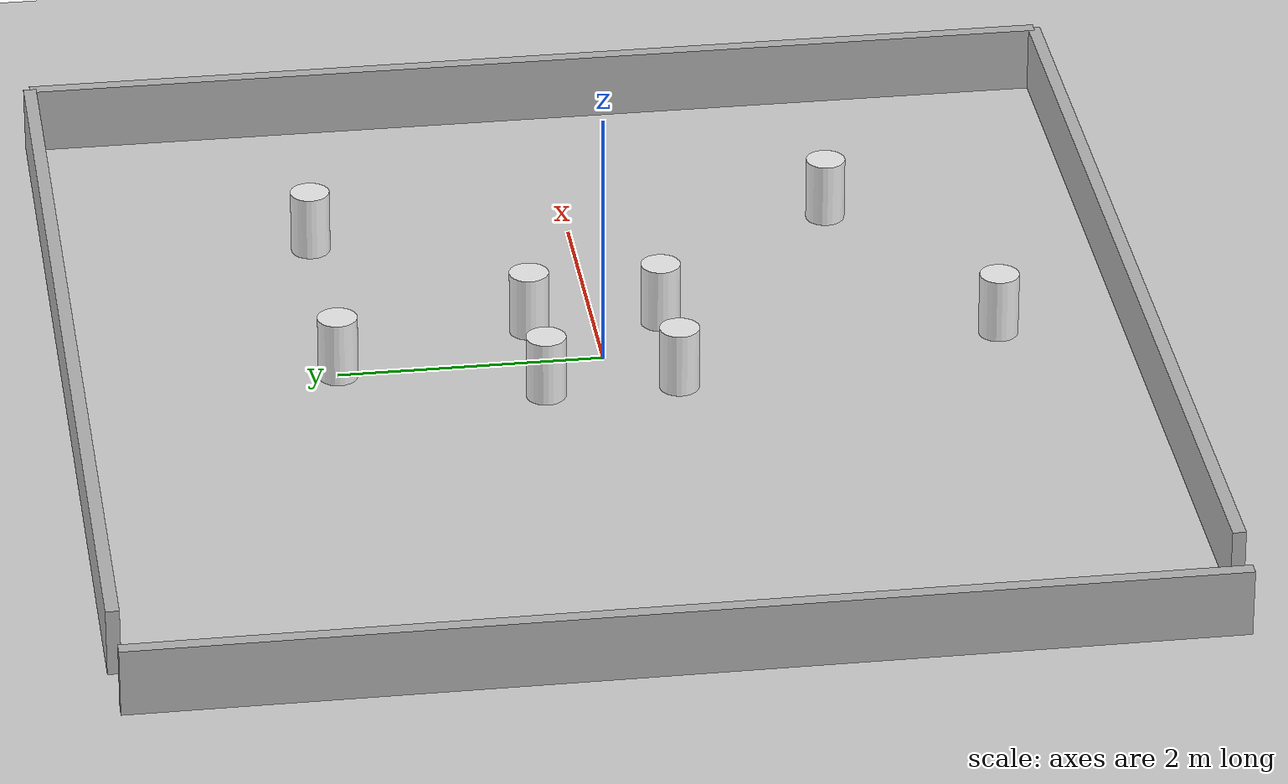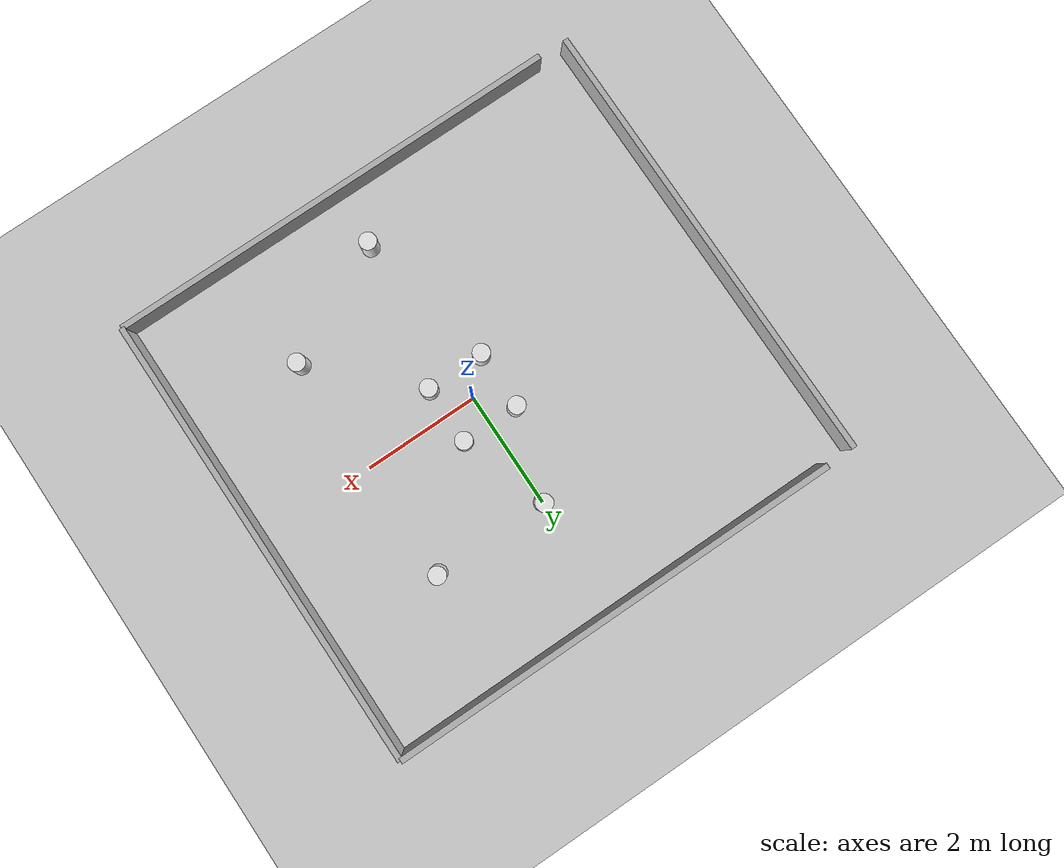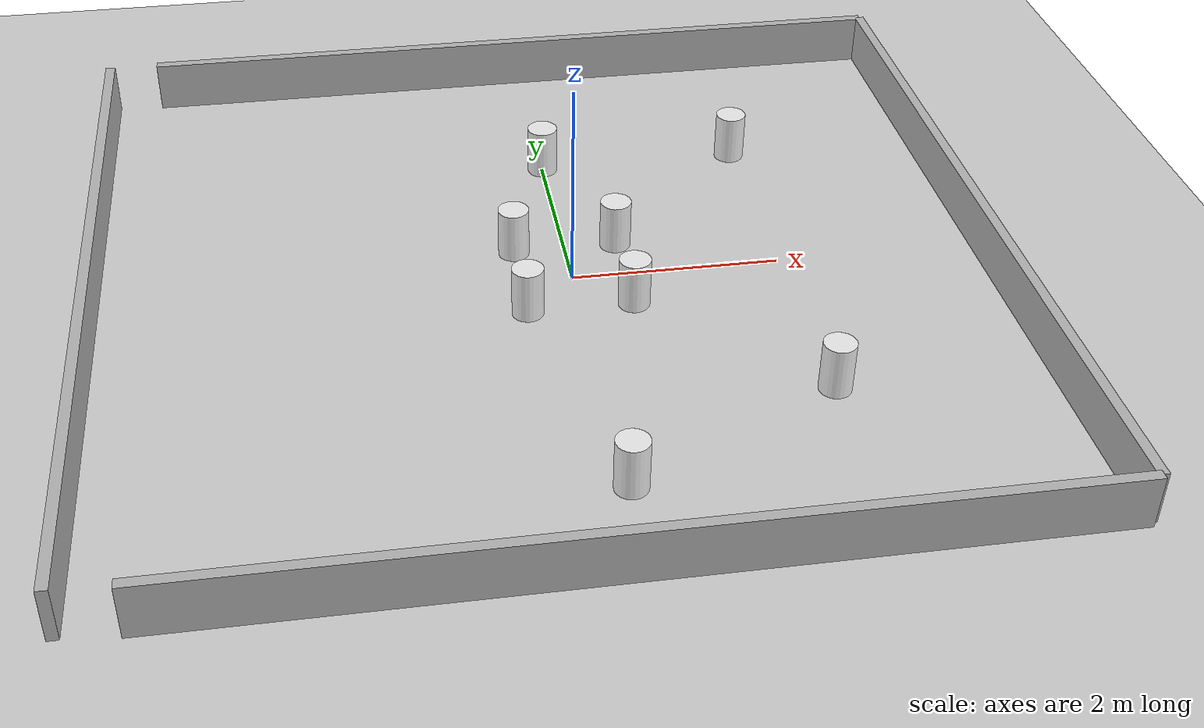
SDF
<sdf version='1.4'>
  <world name='default'>
    <!-- A global light source -->
    <include>
      <uri>model://sun</uri>
    </include>

    <!-- A ground plane -->
    <include>
      <uri>model://ground_plane</uri>
    </include>

    <physics type="ode">
      <real_time_update_rate>1000.0</real_time_update_rate>
      <max_step_size>0.001</max_step_size>
      <real_time_factor>1</real_time_factor>
      <ode>
        <solver>
          <type>quick</type>
          <iters>150</iters>
          <precon_iters>0</precon_iters>
          <sor>1.400000</sor>
          <use_dynamic_moi_rescaling>1</use_dynamic_moi_rescaling>
        </solver>
        <constraints>
          <cfm>0.00001</cfm>
          <erp>0.2</erp>
          <contact_max_correcting_vel>2000.000000</contact_max_correcting_vel>
          <contact_surface_layer>0.01000</contact_surface_layer>
        </constraints>
      </ode>
    </physics>

    <!-- Load model -->

    <!-- Define the wall model -->
    <model name="long_wall">
      <static>true</static>
      <link name="link">
        <collision name="collision">
          <geometry>
            <box>
              <size>8 0.1 1.0</size> <!-- Length, width, height of the wall -->
            </box>
          </geometry>
        </collision>
        <visual name="visual">
          <geometry>
            <box>
              <size>8 0.1 1.0</size> <!-- Length, width, height of the wall -->
            </box>
          </geometry>
          <material>
            <ambient>0.7 0.7 0.7 1</ambient>
            <diffuse>0.7 0.7 0.7 1</diffuse>
            <specular>0.7 0.7 0.7 1</specular>
          </material>
        </visual>
        <pose>0 4 0 0 0 0</pose> <!-- Position the wall in the world -->
      </link>
    </model>

    <model name="long_wal1">
      <static>true</static>
      <link name="link">
        <collision name="collision">
          <geometry>
            <box>
              <size>8 0.1 1.0</size> <!-- Length, width, height of the wall -->
            </box>
          </geometry>
        </collision>
        <visual name="visual">
          <geometry>
            <box>
              <size>8 0.1 1.0</size> <!-- Length, width, height of the wall -->
            </box>
          </geometry>
          <material>
            <ambient>0.7 0.7 0.7 1</ambient>
            <diffuse>0.7 0.7 0.7 1</diffuse>
            <specular>0.7 0.7 0.7 1</specular>
          </material>
        </visual>
        <pose>0 -4 0 0 0 0</pose> <!-- Position the wall in the world -->
      </link>
    </model>

    <model name="long_wall2">
      <static>true</static>
      <link name="link">
        <collision name="collision">
          <geometry>
            <box>
              <size>8 0.1 1.0</size> <!-- Length, width, height of the wall -->
            </box>
          </geometry>
        </collision>
        <visual name="visual">
          <geometry>
            <box>
              <size>8 0.1 1.0</size> <!-- Length, width, height of the wall -->
            </box>
          </geometry>
          <material>
            <ambient>0.7 0.7 0.7 1</ambient>
            <diffuse>0.7 0.7 0.7 1</diffuse>
            <specular>0.7 0.7 0.7 1</specular>
          </material>
        </visual>
        <pose>4 0 0 0 0 1.5708</pose> <!-- Position the wall in the world -->
      </link>
    </model>

    <model name="long_wall3">
      <static>true</static>
      <link name="link">
        <collision name="collision">
          <geometry>
            <box>
              <size>8 0.1 1.0</size> <!-- Length, width, height of the wall -->
            </box>
          </geometry>
        </collision>
        <visual name="visual">
          <geometry>
            <box>
              <size>8 0.1 1.0</size> <!-- Length, width, height of the wall -->
            </box>
          </geometry>
          <material>
            <ambient>0.7 0.7 0.7 1</ambient>
            <diffuse>0.7 0.7 0.7 1</diffuse>
            <specular>0.7 0.7 0.7 1</specular>
          </material>
        </visual>
        <pose>-4.5 0 0 0 0 1.5708</pose> <!-- Position the wall in the world -->
      </link>
    </model>

    <model name='obstacle'>
      <pose frame=''>0 0 0 0 -0 0</pose>
      <link name='obstacle'>
        <collision name='obstacle_1'>
          <pose>-0.5 -0.5 0.25 0 0 0</pose>
          <geometry>
            <cylinder>
              <radius>0.15</radius>
              <length>0.5</length>
            </cylinder>
          </geometry>
          <max_contacts>10</max_contacts>
          <surface>
            <bounce/>
            <friction>
              <ode/>
            </friction>
            <contact>
              <ode/>
            </contact>
          </surface>
        </collision>

        <visual name='obstacle_1'>
          <pose>-0.5 -0.5 0.25 0 0 0</pose>
          <geometry>
            <cylinder>
              <radius>0.15</radius>
              <length>0.5</length>
            </cylinder>
          </geometry>
          <material>
            <script>
              <uri>file://media/materials/scripts/gazebo.material</uri>
              <name>Gazebo/White</name>
            </script>
          </material>
        </visual>

        <collision name='obstacle_2'>
          <pose>-0.5 0.5 0.25 0 0 0</pose>
          <geometry>
            <cylinder>
              <radius>0.15</radius>
              <length>0.5</length>
            </cylinder>
          </geometry>
          <max_contacts>10</max_contacts>
          <surface>
            <bounce/>
            <friction>
              <ode/>
            </friction>
            <contact>
              <ode/>
            </contact>
          </surface>
        </collision>

        <visual name='obstacle_2'>
          <pose>-0.5 0.5 0.25 0 0 0</pose>
          <geometry>
            <cylinder>
              <radius>0.15</radius>
              <length>0.5</length>
            </cylinder>
          </geometry>
          <material>
            <script>
              <uri>file://media/materials/scripts/gazebo.material</uri>
              <name>Gazebo/White</name>
            </script>
          </material>
        </visual>

        <collision name='obstacle_3'>
          <pose>0.5 -0.5 0.25 0 0 0</pose>
          <geometry>
            <cylinder>
              <radius>0.15</radius>
              <length>0.5</length>
            </cylinder>
          </geometry>
          <max_contacts>10</max_contacts>
          <surface>
            <bounce/>
            <friction>
              <ode/>
            </friction>
            <contact>
              <ode/>
            </contact>
          </surface>
        </collision>

        <visual name='obstacle_3'>
          <pose>0.5 -0.5 0.25 0 0 0</pose>
          <geometry>
            <cylinder>
              <radius>0.15</radius>
              <length>0.5</length>
            </cylinder>
          </geometry>
          <material>
            <script>
              <uri>file://media/materials/scripts/gazebo.material</uri>
              <name>Gazebo/White</name>
            </script>
          </material>
        </visual>

        <collision name='obstacle_4'>
          <pose>0.5 0.5 0.25 0 0 0</pose>
          <geometry>
            <cylinder>
              <radius>0.15</radius>
              <length>0.5</length>
            </cylinder>
          </geometry>
          <max_contacts>10</max_contacts>
          <surface>
            <bounce/>
            <friction>
              <ode/>
            </friction>
            <contact>
              <ode/>
            </contact>
          </surface>
        </collision>

        <visual name='obstacle_4'>
          <pose>0.5 0.5 0.25 0 0 0</pose>
          <geometry>
            <cylinder>
              <radius>0.15</radius>
              <length>0.5</length>
            </cylinder>
          </geometry>
          <material>
            <script>
              <uri>file://media/materials/scripts/gazebo.material</uri>
              <name>Gazebo/White</name>
            </script>
          </material>
        </visual>

        <collision name='obstacle_5'>
          <pose>0.0 2.0 0.25 0 0 0</pose>
          <geometry>
            <cylinder>
              <radius>0.15</radius>
              <length>0.5</length>
            </cylinder>
          </geometry>
          <max_contacts>10</max_contacts>
          <surface>
            <bounce/>
            <friction>
              <ode/>
            </friction>
            <contact>
              <ode/>
            </contact>
          </surface>
        </collision>

        <visual name='obstacle_5'>
          <pose>0.0 2.0 0.25 0 0 0</pose>
          <geometry>
            <cylinder>
              <radius>0.15</radius>
              <length>0.5</length>
            </cylinder>
          </geometry>
          <material>
            <script>
              <uri>file://media/materials/scripts/gazebo.material</uri>
              <name>Gazebo/White</name>
            </script>
          </material>
        </visual>

        <collision name='obstacle_6'>
          <pose>0.0 -3.0 0.25 0 0 0</pose>
          <geometry>
            <cylinder>
              <radius>0.15</radius>
              <length>0.5</length>
            </cylinder>
          </geometry>
          <max_contacts>10</max_contacts>
          <surface>
            <bounce/>
            <friction>
              <ode/>
            </friction>
            <contact>
              <ode/>
            </contact>
          </surface>
        </collision>

        <visual name='obstacle_6'>
          <pose>0.0 -3.0 0.25 0 0 0</pose>
          <geometry>
            <cylinder>
              <radius>0.15</radius>
              <length>0.5</length>
            </cylinder>
          </geometry>
          <material>
            <script>
              <uri>file://media/materials/scripts/gazebo.material</uri>
              <name>Gazebo/White</name>
            </script>
          </material>
        </visual>

        <collision name='obstacle_7'>
          <pose>2.0 -2.0 0.25 0 0 0</pose>
          <geometry>
            <cylinder>
              <radius>0.15</radius>
              <length>0.5</length>
            </cylinder>
          </geometry>
          <max_contacts>10</max_contacts>
          <surface>
            <bounce/>
            <friction>
              <ode/>
            </friction>
            <contact>
              <ode/>
            </contact>
          </surface>
        </collision>

        <visual name='obstacle_7'>
          <pose>2.0 -2.0 0.25 0 0 0</pose>
          <geometry>
            <cylinder>
              <radius>0.15</radius>
              <length>0.5</length>
            </cylinder>
          </geometry>
          <material>
            <script>
              <uri>file://media/materials/scripts/gazebo.material</uri>
              <name>Gazebo/White</name>
            </script>
          </material>
        </visual>

        <collision name='obstacle_8'>
          <pose>2.0 2.0 0.25 0 0 0</pose>
          <geometry>
            <cylinder>
              <radius>0.15</radius>
              <length>0.5</length>
            </cylinder>
          </geometry>
          <max_contacts>10</max_contacts>
          <surface>
            <bounce/>
            <friction>
              <ode/>
            </friction>
            <contact>
              <ode/>
            </contact>
          </surface>
        </collision>

        <visual name='obstacle_8'>
          <pose>2.0 2.0 0.25 0 0 0</pose>
          <geometry>
            <cylinder>
              <radius>0.15</radius>
              <length>0.5</length>
            </cylinder>
          </geometry>
          <material>
            <script>
              <uri>file://media/materials/scripts/gazebo.material</uri>
              <name>Gazebo/White</name>
            </script>
          </material>
        </visual>
      </link>
    </model>

    <scene>
      <ambient>0.4 0.4 0.4 1</ambient>
      <background>0.7 0.7 0.7 1</background>
      <shadows>true</shadows>
    </scene>

    <gui fullscreen='0'>
      <camera name='user_camera'>
        <pose>0.0 0.0 17.0 0 1.5708 0</pose>
        <view_controller>orbit</view_controller>
      </camera>
    </gui>
  </world>
</sdf>
